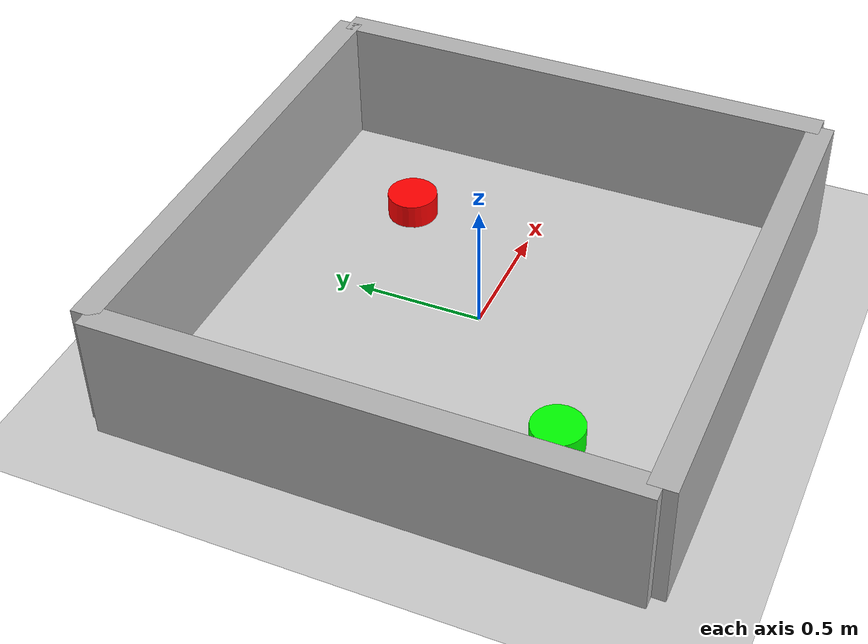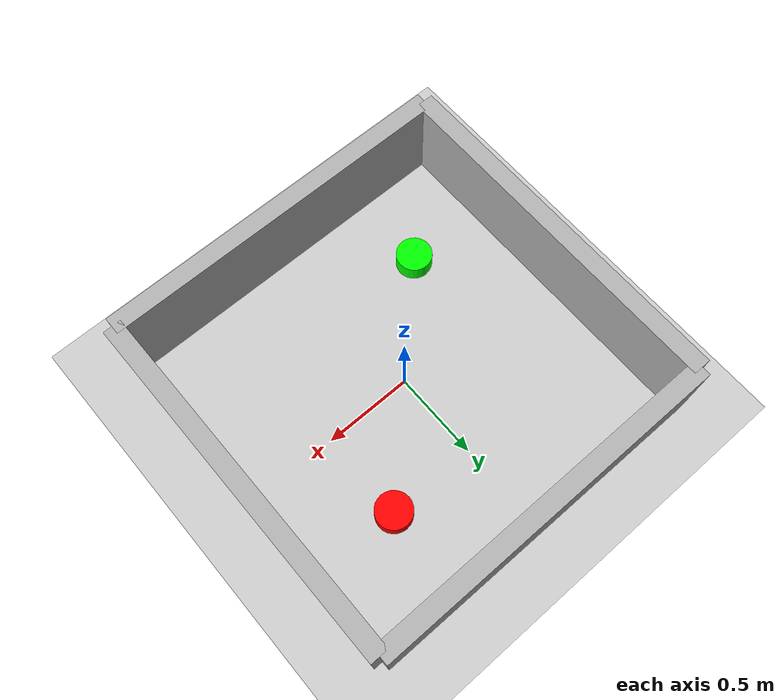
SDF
<?xml version="1.0" ?>
<sdf version="1.6">
  <world name="turtlebot_world">

    <include>
      <uri>model://ground_plane</uri>
    </include>

    <include>
      <uri>model://sun</uri>
    </include>

    <!-- Simple maze walls -->
    <model name="wall1">
      <static>true</static>
      <link name="wall_link">
        <pose>1 0 0.25 0 0 0</pose>
        <collision name="wall_collision">
          <geometry>
            <box>
              <size>0.1 2.0 0.5</size>
            </box>
          </geometry>
        </collision>
        <visual name="wall_visual">
          <geometry>
            <box>
              <size>0.1 2.0 0.5</size>
            </box>
          </geometry>
          <material>
            <ambient>0.7 0.7 0.7 1</ambient>
            <diffuse>0.7 0.7 0.7 1</diffuse>
          </material>
        </visual>
      </link>
    </model>

    <model name="wall2">
      <static>true</static>
      <link name="wall_link">
        <pose>-1 0 0.25 0 0 0</pose>
        <collision name="wall_collision">
          <geometry>
            <box>
              <size>0.1 2.0 0.5</size>
            </box>
          </geometry>
        </collision>
        <visual name="wall_visual">
          <geometry>
            <box>
              <size>0.1 2.0 0.5</size>
            </box>
          </geometry>
          <material>
            <ambient>0.7 0.7 0.7 1</ambient>
            <diffuse>0.7 0.7 0.7 1</diffuse>
          </material>
        </visual>
      </link>
    </model>

    <model name="wall3">
      <static>true</static>
      <link name="wall_link">
        <pose>0 1 0.25 0 0 1.57</pose>
        <collision name="wall_collision">
          <geometry>
            <box>
              <size>0.1 2.0 0.5</size>
            </box>
          </geometry>
        </collision>
        <visual name="wall_visual">
          <geometry>
            <box>
              <size>0.1 2.0 0.5</size>
            </box>
          </geometry>
          <material>
            <ambient>0.7 0.7 0.7 1</ambient>
            <diffuse>0.7 0.7 0.7 1</diffuse>
          </material>
        </visual>
      </link>
    </model>

    <model name="wall4">
      <static>true</static>
      <link name="wall_link">
        <pose>0 -1 0.25 0 0 1.57</pose>
        <collision name="wall_collision">
          <geometry>
            <box>
              <size>0.1 2.0 0.5</size>
            </box>
          </geometry>
        </collision>
        <visual name="wall_visual">
          <geometry>
            <box>
              <size>0.1 2.0 0.5</size>
            </box>
          </geometry>
          <material>
            <ambient>0.7 0.7 0.7 1</ambient>
            <diffuse>0.7 0.7 0.7 1</diffuse>
          </material>
        </visual>
      </link>
    </model>

    <!-- Target objects -->
    <model name="target1">
      <pose>0.5 0.5 0.05 0 0 0</pose>
      <link name="target_link">
        <collision name="target_collision">
          <geometry>
            <cylinder>
              <radius>0.1</radius>
              <length>0.1</length>
            </cylinder>
          </geometry>
        </collision>
        <visual name="target_visual">
          <geometry>
            <cylinder>
              <radius>0.1</radius>
              <length>0.1</length>
            </cylinder>
          </geometry>
          <material>
            <ambient>1 0 0 1</ambient>
            <diffuse>1 0 0 1</diffuse>
          </material>
        </visual>
        <inertial>
          <mass>0.2</mass>
          <inertia>
            <ixx>0.01</ixx>
            <iyy>0.01</iyy>
            <izz>0.01</izz>
          </inertia>
        </inertial>
      </link>
    </model>

    <model name="target2">
      <pose>-0.5 -0.5 0.05 0 0 0</pose>
      <link name="target_link">
        <collision name="target_collision">
          <geometry>
            <cylinder>
              <radius>0.1</radius>
              <length>0.1</length>
            </cylinder>
          </geometry>
        </collision>
        <visual name="target_visual">
          <geometry>
            <cylinder>
              <radius>0.1</radius>
              <length>0.1</length>
            </cylinder>
          </geometry>
          <material>
            <ambient>0 1 0 1</ambient>
            <diffuse>0 1 0 1</diffuse>
          </material>
        </visual>
        <inertial>
          <mass>0.2</mass>
          <inertia>
            <ixx>0.01</ixx>
            <iyy>0.01</iyy>
            <izz>0.01</izz>
          </inertia>
        </inertial>
      </link>
    </model>

    <!-- Physics settings -->
    <physics type="ode">
      <real_time_update_rate>1000</real_time_update_rate>
      <max_step_size>0.001</max_step_size>
      <real_time_factor>1</real_time_factor>
    </physics>

  </world>
</sdf>
